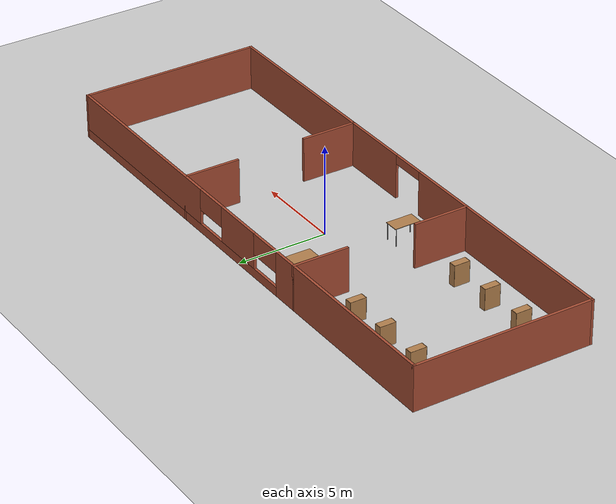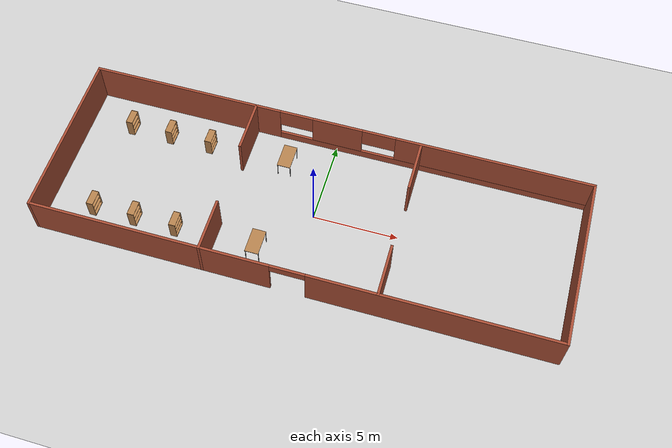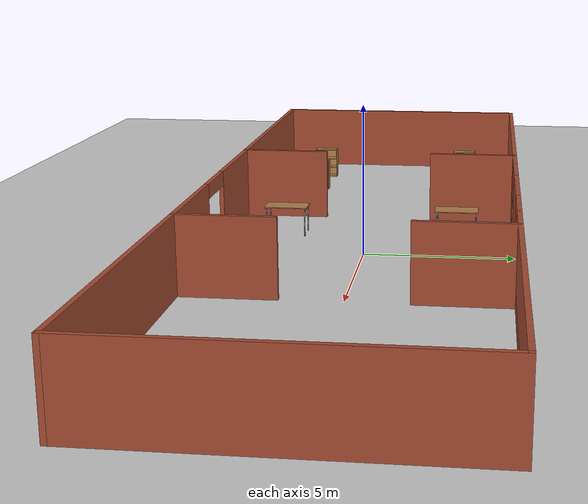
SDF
<sdf version="1.6">
 <world name="default">
  <model name="ground_plane">
   <static>1</static>
   <link name="link">
    <collision name="collision">
     <geometry><plane><normal>0 0 1</normal><size>100 100</size></plane></geometry>
     <surface><friction><ode><mu>100</mu><mu2>50</mu2></ode></friction></surface>
    </collision>
    <visual name="visual">
     <cast_shadows>0</cast_shadows>
     <geometry><plane><normal>0 0 1</normal><size>100 100</size></plane></geometry>
     <material>
      <script><uri>file://media/materials/scripts/gazebo.material</uri><name>Gazebo/Grey</name></script>
     </material>
    </visual>
   </link>
  </model>
  <model name="model">
   <link name="Wall_0">
    <collision name="Wall_0_Collision">
     <geometry><box><size>10.15 0.15 2.5</size></box></geometry>
     <pose>0 0 1.25 0 -0 0</pose>
    </collision>
    <visual name="Wall_0_Visual">
     <pose>0 0 1.25 0 -0 0</pose>
     <geometry><box><size>10.15 0.15 2.5</size></box></geometry>
     <material>
      <script><uri>file://media/materials/scripts/gazebo.material</uri><name>Gazebo/Bricks</name></script>
      <ambient>0.760784 0.662745 0.627451 1</ambient>
     </material>
     <meta><layer>0</layer></meta>
    </visual>
    <pose>-15 0 0 0 -0 1.5708</pose>
   </link>
   <link name="Wall_1">
    <pose>0 5 0 0 -0 0</pose>
    <visual name="Wall_1_Visual_0">
     <pose>-9.2875 0 1.25 0 -0 0</pose>
     <geometry><box><size>11.575 0.15 2.5</size></box></geometry>
     <material>
      <script><uri>file://media/materials/scripts/gazebo.material</uri><name>Gazebo/Bricks</name></script>
      <ambient>0.760784 0.662745 0.627451 1</ambient>
     </material>
     <meta><layer>0</layer></meta>
    </visual>
    <collision name="Wall_1_Collision_0">
     <geometry><box><size>11.575 0.15 2.5</size></box></geometry>
     <pose>-9.2875 0 1.25 0 -0 0</pose>
    </collision>
    <visual name="Wall_1_Visual_1">
     <pose>5.7875 0 0.25 0 -0 0</pose>
     <geometry><box><size>18.575 0.15 0.5</size></box></geometry>
     <material>
      <script><uri>file://media/materials/scripts/gazebo.material</uri><name>Gazebo/Bricks</name></script>
      <ambient>0.760784 0.662745 0.627451 1</ambient>
     </material>
     <meta><layer>0</layer></meta>
    </visual>
    <collision name="Wall_1_Collision_1">
     <geometry><box><size>18.575 0.15 0.5</size></box></geometry>
     <pose>5.7875 0 0.25 0 -0 0</pose>
    </collision>
    <visual name="Wall_1_Visual_2">
     <pose>0 0 1.5 0 -0 0</pose>
     <geometry><box><size>3 0.15 2</size></box></geometry>
     <material>
      <script><uri>file://media/materials/scripts/gazebo.material</uri><name>Gazebo/Bricks</name></script>
      <ambient>0.760784 0.662745 0.627451 1</ambient>
     </material>
     <meta><layer>0</layer></meta>
    </visual>
    <collision name="Wall_1_Collision_2">
     <geometry><box><size>3 0.15 2</size></box></geometry>
     <pose>0 0 1.5 0 -0 0</pose>
    </collision>
    <visual name="Wall_1_Visual_3">
     <pose>9.2875 0 1.5 0 -0 0</pose>
     <geometry><box><size>11.575 0.15 2</size></box></geometry>
     <material>
      <script><uri>file://media/materials/scripts/gazebo.material</uri><name>Gazebo/Bricks</name></script>
      <ambient>0.760784 0.662745 0.627451 1</ambient>
     </material>
     <meta><layer>0</layer></meta>
    </visual>
    <collision name="Wall_1_Collision_3">
     <geometry><box><size>11.575 0.15 2</size></box></geometry>
     <pose>9.2875 0 1.5 0 -0 0</pose>
    </collision>
    <visual name="Wall_1_Visual_4">
     <pose>-2.5 0 1.9 0 -0 0</pose>
     <geometry><box><size>2 0.15 1.2</size></box></geometry>
     <material>
      <script><uri>file://media/materials/scripts/gazebo.material</uri><name>Gazebo/Bricks</name></script>
      <ambient>0.760784 0.662745 0.627451 1</ambient>
     </material>
     <meta><layer>0</layer></meta>
    </visual>
    <collision name="Wall_1_Collision_4">
     <geometry><box><size>2 0.15 1.2</size></box></geometry>
     <pose>-2.5 0 1.9 0 -0 0</pose>
    </collision>
    <visual name="Wall_1_Visual_5">
     <pose>2.5 0 1.9 0 -0 0</pose>
     <geometry><box><size>2 0.15 1.2</size></box></geometry>
     <material>
      <script><uri>file://media/materials/scripts/gazebo.material</uri><name>Gazebo/Bricks</name></script>
      <ambient>0.760784 0.662745 0.627451 1</ambient>
     </material>
     <meta><layer>0</layer></meta>
    </visual>
    <collision name="Wall_1_Collision_5">
     <geometry><box><size>2 0.15 1.2</size></box></geometry>
     <pose>2.5 0 1.9 0 -0 0</pose>
    </collision>
   </link>
   <link name="Wall_10">
    <collision name="Wall_10_Collision">
     <geometry><box><size>3.15 0.15 2.5</size></box></geometry>
     <pose>0 0 1.25 0 -0 0</pose>
    </collision>
    <visual name="Wall_10_Visual">
     <pose>0 0 1.25 0 -0 0</pose>
     <geometry><box><size>3.15 0.15 2.5</size></box></geometry>
     <material>
      <script><uri>file://media/materials/scripts/gazebo.material</uri><name>Gazebo/Bricks</name></script>
      <ambient>0.760784 0.662745 0.627451 1</ambient>
     </material>
     <meta><layer>0</layer></meta>
    </visual>
    <pose>5 3.5 0 0 0 -1.5708</pose>
   </link>
   <link name="Wall_12">
    <collision name="Wall_12_Collision">
     <geometry><box><size>3.15 0.15 2.5</size></box></geometry>
     <pose>0 0 1.25 0 -0 0</pose>
    </collision>
    <visual name="Wall_12_Visual">
     <pose>0 0 1.25 0 -0 0</pose>
     <geometry><box><size>3.15 0.15 2.5</size></box></geometry>
     <material>
      <script><uri>file://media/materials/scripts/gazebo.material</uri><name>Gazebo/Bricks</name></script>
      <ambient>0.760784 0.662745 0.627451 1</ambient>
     </material>
     <meta><layer>0</layer></meta>
    </visual>
    <pose>5 -3.5 0 0 -0 1.5708</pose>
   </link>
   <link name="Wall_2">
    <collision name="Wall_2_Collision">
     <geometry><box><size>10.15 0.15 2.5</size></box></geometry>
     <pose>0 0 1.25 0 -0 0</pose>
    </collision>
    <visual name="Wall_2_Visual">
     <pose>0 0 1.25 0 -0 0</pose>
     <geometry><box><size>10.15 0.15 2.5</size></box></geometry>
     <material>
      <script><uri>file://media/materials/scripts/gazebo.material</uri><name>Gazebo/Bricks</name></script>
      <ambient>0.760784 0.662745 0.627451 1</ambient>
     </material>
     <meta><layer>0</layer></meta>
    </visual>
    <pose>15 0 0 0 0 -1.5708</pose>
   </link>
   <link name="Wall_3">
    <pose>0 -5 0 0 -0 3.14159</pose>
    <visual name="Wall_3_Visual_0">
     <pose>-8.0375 0 1.25 0 -0 0</pose>
     <geometry><box><size>14.075 0.15 2.5</size></box></geometry>
     <material>
      <script><uri>file://media/materials/scripts/gazebo.material</uri><name>Gazebo/Bricks</name></script>
      <ambient>0.760784 0.662745 0.627451 1</ambient>
     </material>
     <meta><layer>0</layer></meta>
    </visual>
    <collision name="Wall_3_Collision_0">
     <geometry><box><size>14.075 0.15 2.5</size></box></geometry>
     <pose>-8.0375 0 1.25 0 -0 0</pose>
    </collision>
    <visual name="Wall_3_Visual_1">
     <pose>8.0375 0 1.25 0 -0 0</pose>
     <geometry><box><size>14.075 0.15 2.5</size></box></geometry>
     <material>
      <script><uri>file://media/materials/scripts/gazebo.material</uri><name>Gazebo/Bricks</name></script>
      <ambient>0.760784 0.662745 0.627451 1</ambient>
     </material>
     <meta><layer>0</layer></meta>
    </visual>
    <collision name="Wall_3_Collision_1">
     <geometry><box><size>14.075 0.15 2.5</size></box></geometry>
     <pose>8.0375 0 1.25 0 -0 0</pose>
    </collision>
    <visual name="Wall_3_Visual_2">
     <pose>0 0 2.25 0 -0 0</pose>
     <geometry><box><size>2 0.15 0.5</size></box></geometry>
     <material>
      <script><uri>file://media/materials/scripts/gazebo.material</uri><name>Gazebo/Bricks</name></script>
      <ambient>0.760784 0.662745 0.627451 1</ambient>
     </material>
     <meta><layer>0</layer></meta>
    </visual>
    <collision name="Wall_3_Collision_2">
     <geometry><box><size>2 0.15 0.5</size></box></geometry>
     <pose>0 0 2.25 0 -0 0</pose>
    </collision>
   </link>
   <link name="Wall_5">
    <collision name="Wall_5_Collision">
     <geometry><box><size>3.15 0.15 2.5</size></box></geometry>
     <pose>0 0 1.25 0 -0 0</pose>
    </collision>
    <visual name="Wall_5_Visual">
     <pose>0 0 1.25 0 -0 0</pose>
     <geometry><box><size>3.15 0.15 2.5</size></box></geometry>
     <material>
      <script><uri>file://media/materials/scripts/gazebo.material</uri><name>Gazebo/Bricks</name></script>
      <ambient>0.760784 0.662745 0.627451 1</ambient>
     </material>
     <meta><layer>0</layer></meta>
    </visual>
    <pose>-5 -3.5 0 0 -0 1.5708</pose>
   </link>
   <link name="Wall_8">
    <collision name="Wall_8_Collision">
     <geometry><box><size>3.15 0.15 2.5</size></box></geometry>
     <pose>0 0 1.25 0 -0 0</pose>
    </collision>
    <visual name="Wall_8_Visual">
     <pose>0 0 1.25 0 -0 0</pose>
     <geometry><box><size>3.15 0.15 2.5</size></box></geometry>
     <material>
      <script><uri>file://media/materials/scripts/gazebo.material</uri><name>Gazebo/Bricks</name></script>
      <ambient>0.760784 0.662745 0.627451 1</ambient>
     </material>
     <meta><layer>0</layer></meta>
    </visual>
    <pose>-5 3.5 0 0 0 -1.5708</pose>
   </link>
   <static>1</static>
  </model>
  <model name="table">
   <static>1</static>
   <link name="link">
    <collision name="surface">
     <pose>0 0 1 0 -0 0</pose>
     <geometry><box><size>1.5 0.8 0.03</size></box></geometry>
     <surface><friction><ode><mu>0.6</mu><mu2>0.6</mu2></ode></friction></surface>
    </collision>
    <visual name="visual1">
     <pose>0 0 1 0 -0 0</pose>
     <geometry><box><size>1.5 0.8 0.03</size></box></geometry>
     <material>
      <script><uri>file://media/materials/scripts/gazebo.material</uri><name>Gazebo/Wood</name></script>
     </material>
    </visual>
    <collision name="front_left_leg">
     <pose>0.68 0.38 0.5 0 -0 0</pose>
     <geometry><cylinder><radius>0.02</radius><length>1</length></cylinder></geometry>
    </collision>
    <visual name="front_left_leg">
     <pose>0.68 0.38 0.5 0 -0 0</pose>
     <geometry><cylinder><radius>0.02</radius><length>1</length></cylinder></geometry>
     <material>
      <script><uri>file://media/materials/scripts/gazebo.material</uri><name>Gazebo/Grey</name></script>
     </material>
    </visual>
    <collision name="front_right_leg">
     <pose>0.68 -0.38 0.5 0 -0 0</pose>
     <geometry><cylinder><radius>0.02</radius><length>1</length></cylinder></geometry>
    </collision>
    <visual name="front_right_leg">
     <pose>0.68 -0.38 0.5 0 -0 0</pose>
     <geometry><cylinder><radius>0.02</radius><length>1</length></cylinder></geometry>
     <material>
      <script><uri>file://media/materials/scripts/gazebo.material</uri><name>Gazebo/Grey</name></script>
     </material>
    </visual>
    <collision name="back_right_leg">
     <pose>-0.68 -0.38 0.5 0 -0 0</pose>
     <geometry><cylinder><radius>0.02</radius><length>1</length></cylinder></geometry>
    </collision>
    <visual name="back_right_leg">
     <pose>-0.68 -0.38 0.5 0 -0 0</pose>
     <geometry><cylinder><radius>0.02</radius><length>1</length></cylinder></geometry>
     <material>
      <script><uri>file://media/materials/scripts/gazebo.material</uri><name>Gazebo/Grey</name></script>
     </material>
    </visual>
    <collision name="back_left_leg">
     <pose>-0.68 0.38 0.5 0 -0 0</pose>
     <geometry><cylinder><radius>0.02</radius><length>1</length></cylinder></geometry>
    </collision>
    <visual name="back_left_leg">
     <pose>-0.68 0.38 0.5 0 -0 0</pose>
     <geometry><cylinder><radius>0.02</radius><length>1</length></cylinder></geometry>
     <material>
      <script><uri>file://media/materials/scripts/gazebo.material</uri><name>Gazebo/Grey</name></script>
     </material>
    </visual>
   </link>
   <pose>-2.5 3 0 0 -0 1.5707</pose>
  </model>
  <model name="table_clone_0">
   <static>1</static>
   <link name="link">
    <collision name="surface">
     <pose>0 0 1 0 -0 0</pose>
     <geometry><box><size>1.5 0.8 0.03</size></box></geometry>
     <surface><friction><ode><mu>0.6</mu><mu2>0.6</mu2></ode></friction></surface>
    </collision>
    <visual name="visual1">
     <pose>0 0 1 0 -0 0</pose>
     <geometry><box><size>1.5 0.8 0.03</size></box></geometry>
     <material>
      <script><uri>file://media/materials/scripts/gazebo.material</uri><name>Gazebo/Wood</name></script>
     </material>
    </visual>
    <collision name="front_left_leg">
     <pose>0.68 0.38 0.5 0 -0 0</pose>
     <geometry><cylinder><radius>0.02</radius><length>1</length></cylinder></geometry>
    </collision>
    <visual name="front_left_leg">
     <pose>0.68 0.38 0.5 0 -0 0</pose>
     <geometry><cylinder><radius>0.02</radius><length>1</length></cylinder></geometry>
     <material>
      <script><uri>file://media/materials/scripts/gazebo.material</uri><name>Gazebo/Grey</name></script>
     </material>
    </visual>
    <collision name="front_right_leg">
     <pose>0.68 -0.38 0.5 0 -0 0</pose>
     <geometry><cylinder><radius>0.02</radius><length>1</length></cylinder></geometry>
    </collision>
    <visual name="front_right_leg">
     <pose>0.68 -0.38 0.5 0 -0 0</pose>
     <geometry><cylinder><radius>0.02</radius><length>1</length></cylinder></geometry>
     <material>
      <script><uri>file://media/materials/scripts/gazebo.material</uri><name>Gazebo/Grey</name></script>
     </material>
    </visual>
    <collision name="back_right_leg">
     <pose>-0.68 -0.38 0.5 0 -0 0</pose>
     <geometry><cylinder><radius>0.02</radius><length>1</length></cylinder></geometry>
    </collision>
    <visual name="back_right_leg">
     <pose>-0.68 -0.38 0.5 0 -0 0</pose>
     <geometry><cylinder><radius>0.02</radius><length>1</length></cylinder></geometry>
     <material>
      <script><uri>file://media/materials/scripts/gazebo.material</uri><name>Gazebo/Grey</name></script>
     </material>
    </visual>
    <collision name="back_left_leg">
     <pose>-0.68 0.38 0.5 0 -0 0</pose>
     <geometry><cylinder><radius>0.02</radius><length>1</length></cylinder></geometry>
    </collision>
    <visual name="back_left_leg">
     <pose>-0.68 0.38 0.5 0 -0 0</pose>
     <geometry><cylinder><radius>0.02</radius><length>1</length></cylinder></geometry>
     <material>
      <script><uri>file://media/materials/scripts/gazebo.material</uri><name>Gazebo/Grey</name></script>
     </material>
    </visual>
   </link>
   <pose>-2.5 -3 0 0 -0 1.5707</pose>
  </model>
  <model name="bookshelf_0">
   <static>1</static>
   <link name="link">
    <inertial><mass>1</mass></inertial>
    <collision name="back">
     <pose>0 0.005 0.6 0 -0 0</pose>
     <geometry><box><size>0.9 0.01 1.2</size></box></geometry>
    </collision>
    <visual name="visual1">
     <pose>0 0.005 0.6 0 -0 0</pose>
     <geometry><box><size>0.9 0.01 1.2</size></box></geometry>
     <material>
      <script><uri>file://media/materials/scripts/gazebo.material</uri><name>Gazebo/Wood</name></script>
     </material>
    </visual>
    <collision name="left_side">
     <pose>0.45 -0.195 0.6 0 -0 0</pose>
     <geometry><box><size>0.02 0.4 1.2</size></box></geometry>
    </collision>
    <visual name="visual2">
     <pose>0.45 -0.195 0.6 0 -0 0</pose>
     <geometry><box><size>0.02 0.4 1.2</size></box></geometry>
     <material>
      <script><uri>file://media/materials/scripts/gazebo.material</uri><name>Gazebo/Wood</name></script>
     </material>
    </visual>
    <collision name="right_side">
     <pose>-0.45 -0.195 0.6 0 -0 0</pose>
     <geometry><box><size>0.02 0.4 1.2</size></box></geometry>
    </collision>
    <visual name="visual3">
     <pose>-0.45 -0.195 0.6 0 -0 0</pose>
     <geometry><box><size>0.02 0.4 1.2</size></box></geometry>
     <material>
      <script><uri>file://media/materials/scripts/gazebo.material</uri><name>Gazebo/Wood</name></script>
     </material>
    </visual>
    <collision name="bottom">
     <pose>0 -0.195 0.03 0 -0 0</pose>
     <geometry><box><size>0.88 0.4 0.06</size></box></geometry>
    </collision>
    <visual name="visual4">
     <pose>0 -0.195 0.03 0 -0 0</pose>
     <geometry><box><size>0.88 0.4 0.06</size></box></geometry>
     <material>
      <script><uri>file://media/materials/scripts/gazebo.material</uri><name>Gazebo/Wood</name></script>
     </material>
    </visual>
    <collision name="top">
     <pose>0 -0.195 1.19 0 -0 0</pose>
     <geometry><box><size>0.88 0.4 0.02</size></box></geometry>
    </collision>
    <visual name="visual5">
     <pose>0 -0.195 1.19 0 -0 0</pose>
     <geometry><box><size>0.88 0.4 0.02</size></box></geometry>
     <material>
      <script><uri>file://media/materials/scripts/gazebo.material</uri><name>Gazebo/Wood</name></script>
     </material>
    </visual>
    <collision name="low_shelf">
     <pose>0 -0.195 0.43 0 -0 0</pose>
     <geometry><box><size>0.88 0.4 0.02</size></box></geometry>
    </collision>
    <visual name="visual6">
     <pose>0 -0.195 0.43 0 -0 0</pose>
     <geometry><box><size>0.88 0.4 0.02</size></box></geometry>
     <material>
      <script><uri>file://media/materials/scripts/gazebo.material</uri><name>Gazebo/Wood</name></script>
     </material>
    </visual>
    <collision name="high_shelf">
     <pose>0 -0.195 0.8 0 -0 0</pose>
     <geometry><box><size>0.88 0.4 0.02</size></box></geometry>
    </collision>
    <visual name="visual7">
     <pose>0 -0.195 0.8 0 -0 0</pose>
     <geometry><box><size>0.88 0.4 0.02</size></box></geometry>
     <material>
      <script><uri>file://media/materials/scripts/gazebo.material</uri><name>Gazebo/Wood</name></script>
     </material>
    </visual>
   </link>
   <pose>-7.5 -3 0 0 -0 1.5707</pose>
  </model>
  <model name="bookshelf_0_clone">
   <static>1</static>
   <link name="link">
    <inertial><mass>1</mass></inertial>
    <collision name="back">
     <pose>0 0.005 0.6 0 -0 0</pose>
     <geometry><box><size>0.9 0.01 1.2</size></box></geometry>
    </collision>
    <visual name="visual1">
     <pose>0 0.005 0.6 0 -0 0</pose>
     <geometry><box><size>0.9 0.01 1.2</size></box></geometry>
     <material>
      <script><uri>file://media/materials/scripts/gazebo.material</uri><name>Gazebo/Wood</name></script>
     </material>
    </visual>
    <collision name="left_side">
     <pose>0.45 -0.195 0.6 0 -0 0</pose>
     <geometry><box><size>0.02 0.4 1.2</size></box></geometry>
    </collision>
    <visual name="visual2">
     <pose>0.45 -0.195 0.6 0 -0 0</pose>
     <geometry><box><size>0.02 0.4 1.2</size></box></geometry>
     <material>
      <script><uri>file://media/materials/scripts/gazebo.material</uri><name>Gazebo/Wood</name></script>
     </material>
    </visual>
    <collision name="right_side">
     <pose>-0.45 -0.195 0.6 0 -0 0</pose>
     <geometry><box><size>0.02 0.4 1.2</size></box></geometry>
    </collision>
    <visual name="visual3">
     <pose>-0.45 -0.195 0.6 0 -0 0</pose>
     <geometry><box><size>0.02 0.4 1.2</size></box></geometry>
     <material>
      <script><uri>file://media/materials/scripts/gazebo.material</uri><name>Gazebo/Wood</name></script>
     </material>
    </visual>
    <collision name="bottom">
     <pose>0 -0.195 0.03 0 -0 0</pose>
     <geometry><box><size>0.88 0.4 0.06</size></box></geometry>
    </collision>
    <visual name="visual4">
     <pose>0 -0.195 0.03 0 -0 0</pose>
     <geometry><box><size>0.88 0.4 0.06</size></box></geometry>
     <material>
      <script><uri>file://media/materials/scripts/gazebo.material</uri><name>Gazebo/Wood</name></script>
     </material>
    </visual>
    <collision name="top">
     <pose>0 -0.195 1.19 0 -0 0</pose>
     <geometry><box><size>0.88 0.4 0.02</size></box></geometry>
    </collision>
    <visual name="visual5">
     <pose>0 -0.195 1.19 0 -0 0</pose>
     <geometry><box><size>0.88 0.4 0.02</size></box></geometry>
     <material>
      <script><uri>file://media/materials/scripts/gazebo.material</uri><name>Gazebo/Wood</name></script>
     </material>
    </visual>
    <collision name="low_shelf">
     <pose>0 -0.195 0.43 0 -0 0</pose>
     <geometry><box><size>0.88 0.4 0.02</size></box></geometry>
    </collision>
    <visual name="visual6">
     <pose>0 -0.195 0.43 0 -0 0</pose>
     <geometry><box><size>0.88 0.4 0.02</size></box></geometry>
     <material>
      <script><uri>file://media/materials/scripts/gazebo.material</uri><name>Gazebo/Wood</name></script>
     </material>
    </visual>
    <collision name="high_shelf">
     <pose>0 -0.195 0.8 0 -0 0</pose>
     <geometry><box><size>0.88 0.4 0.02</size></box></geometry>
    </collision>
    <visual name="visual7">
     <pose>0 -0.195 0.8 0 -0 0</pose>
     <geometry><box><size>0.88 0.4 0.02</size></box></geometry>
     <material>
      <script><uri>file://media/materials/scripts/gazebo.material</uri><name>Gazebo/Wood</name></script>
     </material>
    </visual>
   </link>
   <pose>-10 -3 0 0 -0 1.5707</pose>
  </model>
  <model name="bookshelf_0_clone_0">
   <static>1</static>
   <link name="link">
    <inertial><mass>1</mass></inertial>
    <collision name="back">
     <pose>0 0.005 0.6 0 -0 0</pose>
     <geometry><box><size>0.9 0.01 1.2</size></box></geometry>
    </collision>
    <visual name="visual1">
     <pose>0 0.005 0.6 0 -0 0</pose>
     <geometry><box><size>0.9 0.01 1.2</size></box></geometry>
     <material>
      <script><uri>file://media/materials/scripts/gazebo.material</uri><name>Gazebo/Wood</name></script>
     </material>
    </visual>
    <collision name="left_side">
     <pose>0.45 -0.195 0.6 0 -0 0</pose>
     <geometry><box><size>0.02 0.4 1.2</size></box></geometry>
    </collision>
    <visual name="visual2">
     <pose>0.45 -0.195 0.6 0 -0 0</pose>
     <geometry><box><size>0.02 0.4 1.2</size></box></geometry>
     <material>
      <script><uri>file://media/materials/scripts/gazebo.material</uri><name>Gazebo/Wood</name></script>
     </material>
    </visual>
    <collision name="right_side">
     <pose>-0.45 -0.195 0.6 0 -0 0</pose>
     <geometry><box><size>0.02 0.4 1.2</size></box></geometry>
    </collision>
    <visual name="visual3">
     <pose>-0.45 -0.195 0.6 0 -0 0</pose>
     <geometry><box><size>0.02 0.4 1.2</size></box></geometry>
     <material>
      <script><uri>file://media/materials/scripts/gazebo.material</uri><name>Gazebo/Wood</name></script>
     </material>
    </visual>
    <collision name="bottom">
     <pose>0 -0.195 0.03 0 -0 0</pose>
     <geometry><box><size>0.88 0.4 0.06</size></box></geometry>
    </collision>
    <visual name="visual4">
     <pose>0 -0.195 0.03 0 -0 0</pose>
     <geometry><box><size>0.88 0.4 0.06</size></box></geometry>
     <material>
      <script><uri>file://media/materials/scripts/gazebo.material</uri><name>Gazebo/Wood</name></script>
     </material>
    </visual>
    <collision name="top">
     <pose>0 -0.195 1.19 0 -0 0</pose>
     <geometry><box><size>0.88 0.4 0.02</size></box></geometry>
    </collision>
    <visual name="visual5">
     <pose>0 -0.195 1.19 0 -0 0</pose>
     <geometry><box><size>0.88 0.4 0.02</size></box></geometry>
     <material>
      <script><uri>file://media/materials/scripts/gazebo.material</uri><name>Gazebo/Wood</name></script>
     </material>
    </visual>
    <collision name="low_shelf">
     <pose>0 -0.195 0.43 0 -0 0</pose>
     <geometry><box><size>0.88 0.4 0.02</size></box></geometry>
    </collision>
    <visual name="visual6">
     <pose>0 -0.195 0.43 0 -0 0</pose>
     <geometry><box><size>0.88 0.4 0.02</size></box></geometry>
     <material>
      <script><uri>file://media/materials/scripts/gazebo.material</uri><name>Gazebo/Wood</name></script>
     </material>
    </visual>
    <collision name="high_shelf">
     <pose>0 -0.195 0.8 0 -0 0</pose>
     <geometry><box><size>0.88 0.4 0.02</size></box></geometry>
    </collision>
    <visual name="visual7">
     <pose>0 -0.195 0.8 0 -0 0</pose>
     <geometry><box><size>0.88 0.4 0.02</size></box></geometry>
     <material>
      <script><uri>file://media/materials/scripts/gazebo.material</uri><name>Gazebo/Wood</name></script>
     </material>
    </visual>
   </link>
   <pose>-12.5 -3 0 0 -0 1.5707</pose>
  </model>
  <model name="bookshelf_0_clone_1">
   <static>1</static>
   <link name="link">
    <inertial><mass>1</mass></inertial>
    <collision name="back">
     <pose>0 0.005 0.6 0 -0 0</pose>
     <geometry><box><size>0.9 0.01 1.2</size></box></geometry>
    </collision>
    <visual name="visual1">
     <pose>0 0.005 0.6 0 -0 0</pose>
     <geometry><box><size>0.9 0.01 1.2</size></box></geometry>
     <material>
      <script><uri>file://media/materials/scripts/gazebo.material</uri><name>Gazebo/Wood</name></script>
     </material>
    </visual>
    <collision name="left_side">
     <pose>0.45 -0.195 0.6 0 -0 0</pose>
     <geometry><box><size>0.02 0.4 1.2</size></box></geometry>
    </collision>
    <visual name="visual2">
     <pose>0.45 -0.195 0.6 0 -0 0</pose>
     <geometry><box><size>0.02 0.4 1.2</size></box></geometry>
     <material>
      <script><uri>file://media/materials/scripts/gazebo.material</uri><name>Gazebo/Wood</name></script>
     </material>
    </visual>
    <collision name="right_side">
     <pose>-0.45 -0.195 0.6 0 -0 0</pose>
     <geometry><box><size>0.02 0.4 1.2</size></box></geometry>
    </collision>
    <visual name="visual3">
     <pose>-0.45 -0.195 0.6 0 -0 0</pose>
     <geometry><box><size>0.02 0.4 1.2</size></box></geometry>
     <material>
      <script><uri>file://media/materials/scripts/gazebo.material</uri><name>Gazebo/Wood</name></script>
     </material>
    </visual>
    <collision name="bottom">
     <pose>0 -0.195 0.03 0 -0 0</pose>
     <geometry><box><size>0.88 0.4 0.06</size></box></geometry>
    </collision>
    <visual name="visual4">
     <pose>0 -0.195 0.03 0 -0 0</pose>
     <geometry><box><size>0.88 0.4 0.06</size></box></geometry>
     <material>
      <script><uri>file://media/materials/scripts/gazebo.material</uri><name>Gazebo/Wood</name></script>
     </material>
    </visual>
    <collision name="top">
     <pose>0 -0.195 1.19 0 -0 0</pose>
     <geometry><box><size>0.88 0.4 0.02</size></box></geometry>
    </collision>
    <visual name="visual5">
     <pose>0 -0.195 1.19 0 -0 0</pose>
     <geometry><box><size>0.88 0.4 0.02</size></box></geometry>
     <material>
      <script><uri>file://media/materials/scripts/gazebo.material</uri><name>Gazebo/Wood</name></script>
     </material>
    </visual>
    <collision name="low_shelf">
     <pose>0 -0.195 0.43 0 -0 0</pose>
     <geometry><box><size>0.88 0.4 0.02</size></box></geometry>
    </collision>
    <visual name="visual6">
     <pose>0 -0.195 0.43 0 -0 0</pose>
     <geometry><box><size>0.88 0.4 0.02</size></box></geometry>
     <material>
      <script><uri>file://media/materials/scripts/gazebo.material</uri><name>Gazebo/Wood</name></script>
     </material>
    </visual>
    <collision name="high_shelf">
     <pose>0 -0.195 0.8 0 -0 0</pose>
     <geometry><box><size>0.88 0.4 0.02</size></box></geometry>
    </collision>
    <visual name="visual7">
     <pose>0 -0.195 0.8 0 -0 0</pose>
     <geometry><box><size>0.88 0.4 0.02</size></box></geometry>
     <material>
      <script><uri>file://media/materials/scripts/gazebo.material</uri><name>Gazebo/Wood</name></script>
     </material>
    </visual>
   </link>
   <pose>-7.5 3 0 0 -0 1.5707</pose>
  </model>
  <model name="bookshelf_0_clone_2">
   <static>1</static>
   <link name="link">
    <inertial><mass>1</mass></inertial>
    <collision name="back">
     <pose>0 0.005 0.6 0 -0 0</pose>
     <geometry><box><size>0.9 0.01 1.2</size></box></geometry>
    </collision>
    <visual name="visual1">
     <pose>0 0.005 0.6 0 -0 0</pose>
     <geometry><box><size>0.9 0.01 1.2</size></box></geometry>
     <material>
      <script><uri>file://media/materials/scripts/gazebo.material</uri><name>Gazebo/Wood</name></script>
     </material>
    </visual>
    <collision name="left_side">
     <pose>0.45 -0.195 0.6 0 -0 0</pose>
     <geometry><box><size>0.02 0.4 1.2</size></box></geometry>
    </collision>
    <visual name="visual2">
     <pose>0.45 -0.195 0.6 0 -0 0</pose>
     <geometry><box><size>0.02 0.4 1.2</size></box></geometry>
     <material>
      <script><uri>file://media/materials/scripts/gazebo.material</uri><name>Gazebo/Wood</name></script>
     </material>
    </visual>
    <collision name="right_side">
     <pose>-0.45 -0.195 0.6 0 -0 0</pose>
     <geometry><box><size>0.02 0.4 1.2</size></box></geometry>
    </collision>
    <visual name="visual3">
     <pose>-0.45 -0.195 0.6 0 -0 0</pose>
     <geometry><box><size>0.02 0.4 1.2</size></box></geometry>
     <material>
      <script><uri>file://media/materials/scripts/gazebo.material</uri><name>Gazebo/Wood</name></script>
     </material>
    </visual>
    <collision name="bottom">
     <pose>0 -0.195 0.03 0 -0 0</pose>
     <geometry><box><size>0.88 0.4 0.06</size></box></geometry>
    </collision>
    <visual name="visual4">
     <pose>0 -0.195 0.03 0 -0 0</pose>
     <geometry><box><size>0.88 0.4 0.06</size></box></geometry>
     <material>
      <script><uri>file://media/materials/scripts/gazebo.material</uri><name>Gazebo/Wood</name></script>
     </material>
    </visual>
    <collision name="top">
     <pose>0 -0.195 1.19 0 -0 0</pose>
     <geometry><box><size>0.88 0.4 0.02</size></box></geometry>
    </collision>
    <visual name="visual5">
     <pose>0 -0.195 1.19 0 -0 0</pose>
     <geometry><box><size>0.88 0.4 0.02</size></box></geometry>
     <material>
      <script><uri>file://media/materials/scripts/gazebo.material</uri><name>Gazebo/Wood</name></script>
     </material>
    </visual>
    <collision name="low_shelf">
     <pose>0 -0.195 0.43 0 -0 0</pose>
     <geometry><box><size>0.88 0.4 0.02</size></box></geometry>
    </collision>
    <visual name="visual6">
     <pose>0 -0.195 0.43 0 -0 0</pose>
     <geometry><box><size>0.88 0.4 0.02</size></box></geometry>
     <material>
      <script><uri>file://media/materials/scripts/gazebo.material</uri><name>Gazebo/Wood</name></script>
     </material>
    </visual>
    <collision name="high_shelf">
     <pose>0 -0.195 0.8 0 -0 0</pose>
     <geometry><box><size>0.88 0.4 0.02</size></box></geometry>
    </collision>
    <visual name="visual7">
     <pose>0 -0.195 0.8 0 -0 0</pose>
     <geometry><box><size>0.88 0.4 0.02</size></box></geometry>
     <material>
      <script><uri>file://media/materials/scripts/gazebo.material</uri><name>Gazebo/Wood</name></script>
     </material>
    </visual>
   </link>
   <pose>-10 3 0 0 -0 1.5707</pose>
  </model>
  <model name="bookshelf_0_clone_3">
   <static>1</static>
   <link name="link">
    <inertial><mass>1</mass></inertial>
    <collision name="back">
     <pose>0 0.005 0.6 0 -0 0</pose>
     <geometry><box><size>0.9 0.01 1.2</size></box></geometry>
    </collision>
    <visual name="visual1">
     <pose>0 0.005 0.6 0 -0 0</pose>
     <geometry><box><size>0.9 0.01 1.2</size></box></geometry>
     <material>
      <script><uri>file://media/materials/scripts/gazebo.material</uri><name>Gazebo/Wood</name></script>
     </material>
    </visual>
    <collision name="left_side">
     <pose>0.45 -0.195 0.6 0 -0 0</pose>
     <geometry><box><size>0.02 0.4 1.2</size></box></geometry>
    </collision>
    <visual name="visual2">
     <pose>0.45 -0.195 0.6 0 -0 0</pose>
     <geometry><box><size>0.02 0.4 1.2</size></box></geometry>
     <material>
      <script><uri>file://media/materials/scripts/gazebo.material</uri><name>Gazebo/Wood</name></script>
     </material>
    </visual>
    <collision name="right_side">
     <pose>-0.45 -0.195 0.6 0 -0 0</pose>
     <geometry><box><size>0.02 0.4 1.2</size></box></geometry>
    </collision>
    <visual name="visual3">
     <pose>-0.45 -0.195 0.6 0 -0 0</pose>
     <geometry><box><size>0.02 0.4 1.2</size></box></geometry>
     <material>
      <script><uri>file://media/materials/scripts/gazebo.material</uri><name>Gazebo/Wood</name></script>
     </material>
    </visual>
    <collision name="bottom">
     <pose>0 -0.195 0.03 0 -0 0</pose>
     <geometry><box><size>0.88 0.4 0.06</size></box></geometry>
    </collision>
    <visual name="visual4">
     <pose>0 -0.195 0.03 0 -0 0</pose>
     <geometry><box><size>0.88 0.4 0.06</size></box></geometry>
     <material>
      <script><uri>file://media/materials/scripts/gazebo.material</uri><name>Gazebo/Wood</name></script>
     </material>
    </visual>
    <collision name="top">
     <pose>0 -0.195 1.19 0 -0 0</pose>
     <geometry><box><size>0.88 0.4 0.02</size></box></geometry>
    </collision>
    <visual name="visual5">
     <pose>0 -0.195 1.19 0 -0 0</pose>
     <geometry><box><size>0.88 0.4 0.02</size></box></geometry>
     <material>
      <script><uri>file://media/materials/scripts/gazebo.material</uri><name>Gazebo/Wood</name></script>
     </material>
    </visual>
    <collision name="low_shelf">
     <pose>0 -0.195 0.43 0 -0 0</pose>
     <geometry><box><size>0.88 0.4 0.02</size></box></geometry>
    </collision>
    <visual name="visual6">
     <pose>0 -0.195 0.43 0 -0 0</pose>
     <geometry><box><size>0.88 0.4 0.02</size></box></geometry>
     <material>
      <script><uri>file://media/materials/scripts/gazebo.material</uri><name>Gazebo/Wood</name></script>
     </material>
    </visual>
    <collision name="high_shelf">
     <pose>0 -0.195 0.8 0 -0 0</pose>
     <geometry><box><size>0.88 0.4 0.02</size></box></geometry>
    </collision>
    <visual name="visual7">
     <pose>0 -0.195 0.8 0 -0 0</pose>
     <geometry><box><size>0.88 0.4 0.02</size></box></geometry>
     <material>
      <script><uri>file://media/materials/scripts/gazebo.material</uri><name>Gazebo/Wood</name></script>
     </material>
    </visual>
   </link>
   <pose>-12.5 3 0 0 -0 1.5707</pose>
  </model>
 </world>
</sdf>
